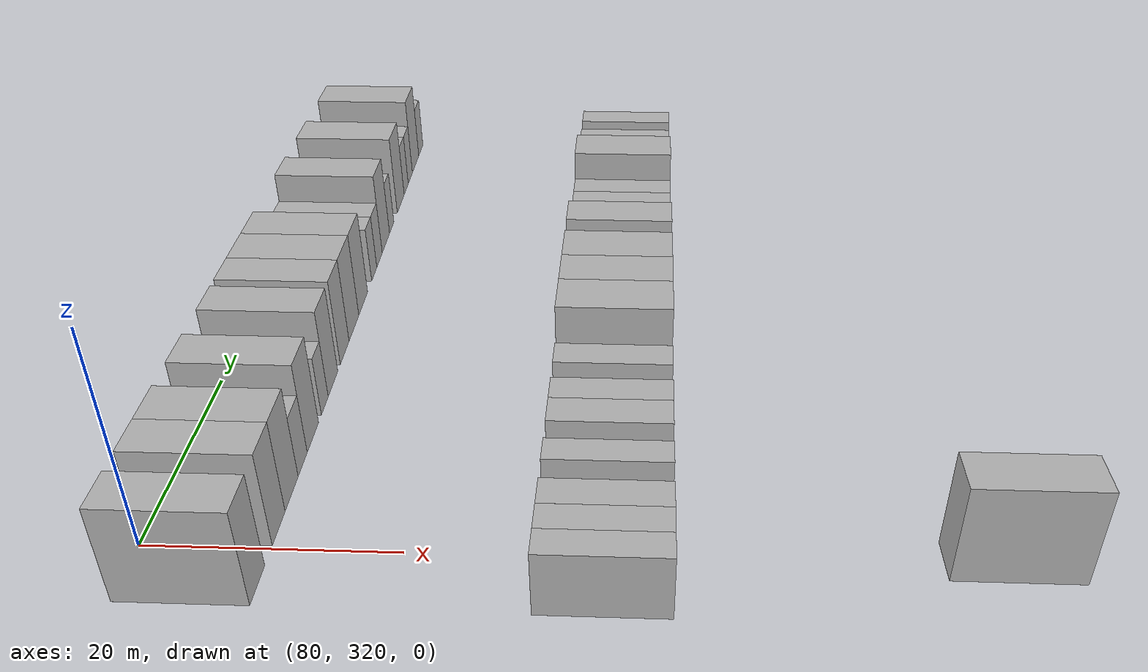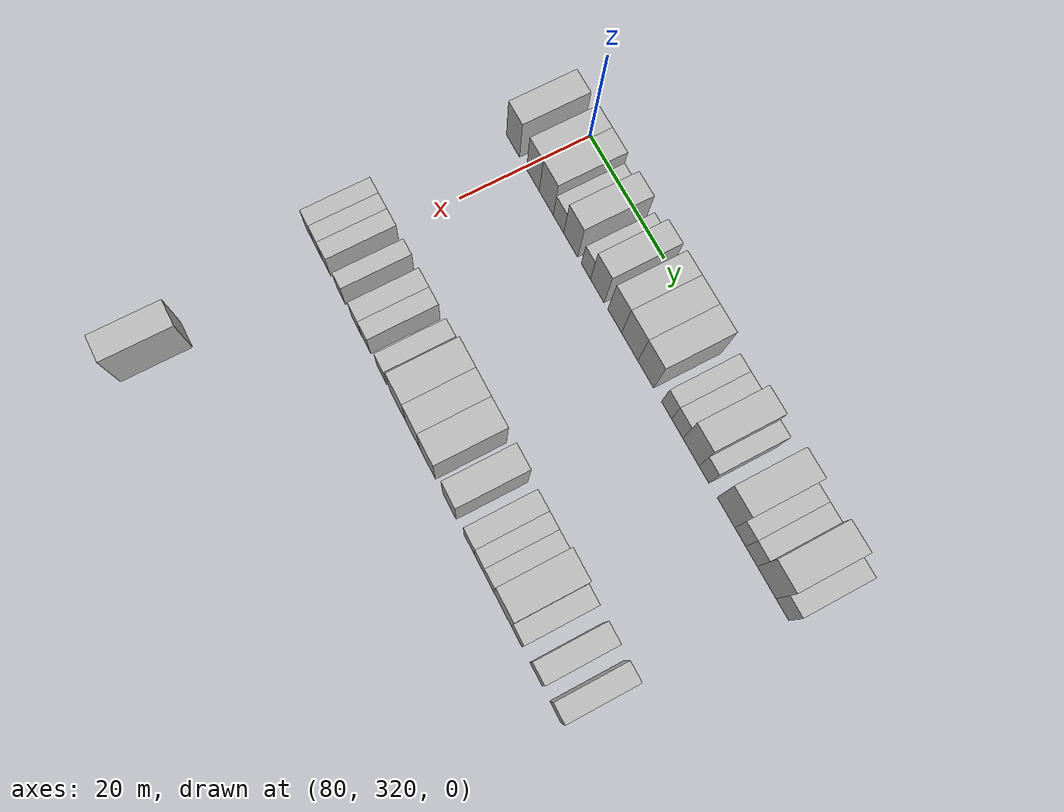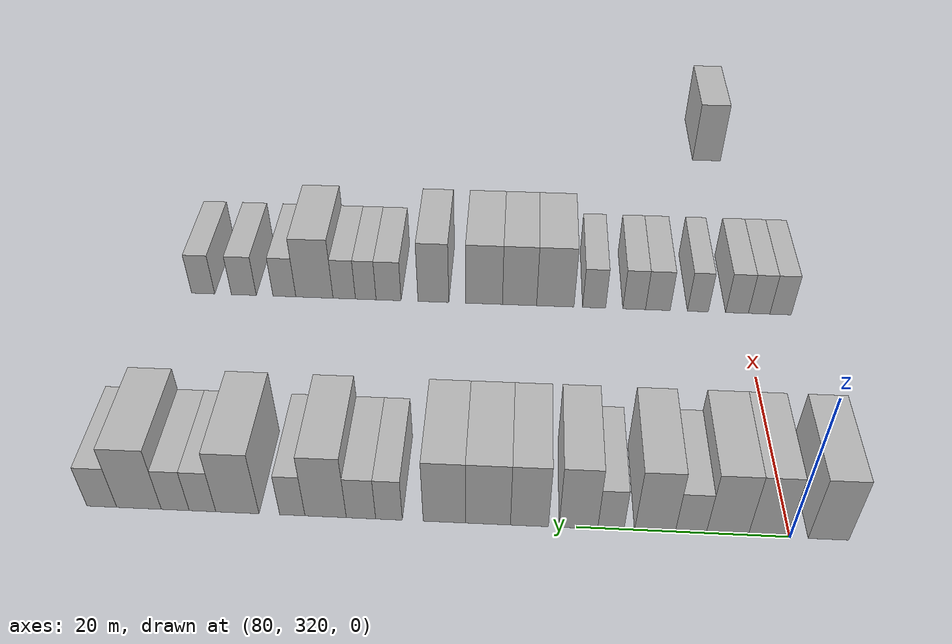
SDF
<sdf version="1.6">
 <world name="default">
  <model name="building_681">
   <static>1</static>
   <pose>85.0000 316.4107 0 0.000000 0.000000 0.000000</pose>
   <link name="link">
    <pose>0 0 4.50 0 0 0</pose>
    <collision name="collision"><geometry><box><size>10.0000 3.7704 9.0000</size></box></geometry></collision>
    <visual name="visual">
     <cast_shadows>0</cast_shadows>
     <geometry><box><size>10.0000 3.7704 9.0000</size></box></geometry>
     <material>
      <script>
       <uri>model://HANNAS_wall/materials/scripts</uri>
       <uri>model://HANNAS_wall/materials/textures</uri>
       <name>vrc/HANNAS_wall</name>
      </script>
     </material>
    </visual>
   </link>
  </model>
  <model name="building_682">
   <static>1</static>
   <pose>85.0000 322.0993 0 0.000000 0.000000 0.000000</pose>
   <link name="link">
    <pose>0 0 4.50 0 0 0</pose>
    <collision name="collision"><geometry><box><size>10.0000 3.6068 9.0000</size></box></geometry></collision>
    <visual name="visual">
     <cast_shadows>0</cast_shadows>
     <geometry><box><size>10.0000 3.6068 9.0000</size></box></geometry>
     <material>
      <script>
       <uri>model://HANNAS_wall/materials/scripts</uri>
       <uri>model://HANNAS_wall/materials/textures</uri>
       <name>vrc/HANNAS_wall</name>
      </script>
     </material>
    </visual>
   </link>
  </model>
  <model name="building_683">
   <static>1</static>
   <pose>85.0000 325.8701 0 0.000000 0.000000 0.000000</pose>
   <link name="link">
    <pose>0 0 4.50 0 0 0</pose>
    <collision name="collision"><geometry><box><size>10.0000 3.9348 9.0000</size></box></geometry></collision>
    <visual name="visual">
     <cast_shadows>0</cast_shadows>
     <geometry><box><size>10.0000 3.9348 9.0000</size></box></geometry>
     <material>
      <script>
       <uri>model://HANNAS_wall/materials/scripts</uri>
       <uri>model://HANNAS_wall/materials/textures</uri>
       <name>vrc/HANNAS_wall</name>
      </script>
     </material>
    </visual>
   </link>
  </model>
  <model name="building_684">
   <static>1</static>
   <pose>85.0000 329.2868 0 0.000000 0.000000 0.000000</pose>
   <link name="link">
    <pose>0 0 3.00 0 0 0</pose>
    <collision name="collision"><geometry><box><size>10.0000 2.8987 6.0000</size></box></geometry></collision>
    <visual name="visual">
     <cast_shadows>0</cast_shadows>
     <geometry><box><size>10.0000 2.8987 6.0000</size></box></geometry>
     <material>
      <script>
       <uri>model://HANNAS_wall/materials/scripts</uri>
       <uri>model://HANNAS_wall/materials/textures</uri>
       <name>vrc/HANNAS_wall</name>
      </script>
     </material>
    </visual>
   </link>
  </model>
  <model name="building_685">
   <static>1</static>
   <pose>85.0000 332.6490 0 0.000000 0.000000 0.000000</pose>
   <link name="link">
    <pose>0 0 4.50 0 0 0</pose>
    <collision name="collision"><geometry><box><size>10.0000 3.8256 9.0000</size></box></geometry></collision>
    <visual name="visual">
     <cast_shadows>0</cast_shadows>
     <geometry><box><size>10.0000 3.8256 9.0000</size></box></geometry>
     <material>
      <script>
       <uri>model://HANNAS_wall/materials/scripts</uri>
       <uri>model://HANNAS_wall/materials/textures</uri>
       <name>vrc/HANNAS_wall</name>
      </script>
     </material>
    </visual>
   </link>
  </model>
  <model name="building_686">
   <static>1</static>
   <pose>85.0000 336.7998 0 0.000000 0.000000 0.000000</pose>
   <link name="link">
    <pose>0 0 3.00 0 0 0</pose>
    <collision name="collision"><geometry><box><size>10.0000 2.4761 6.0000</size></box></geometry></collision>
    <visual name="visual">
     <cast_shadows>0</cast_shadows>
     <geometry><box><size>10.0000 2.4761 6.0000</size></box></geometry>
     <material>
      <script>
       <uri>model://HANNAS_wall/materials/scripts</uri>
       <uri>model://HANNAS_wall/materials/textures</uri>
       <name>vrc/HANNAS_wall</name>
      </script>
     </material>
    </visual>
   </link>
  </model>
  <model name="building_687">
   <static>1</static>
   <pose>85.0000 339.8692 0 0.000000 0.000000 0.000000</pose>
   <link name="link">
    <pose>0 0 4.50 0 0 0</pose>
    <collision name="collision"><geometry><box><size>10.0000 3.6625 9.0000</size></box></geometry></collision>
    <visual name="visual">
     <cast_shadows>0</cast_shadows>
     <geometry><box><size>10.0000 3.6625 9.0000</size></box></geometry>
     <material>
      <script>
       <uri>model://HANNAS_wall/materials/scripts</uri>
       <uri>model://HANNAS_wall/materials/textures</uri>
       <name>vrc/HANNAS_wall</name>
      </script>
     </material>
    </visual>
   </link>
  </model>
  <model name="building_688">
   <static>1</static>
   <pose>85.0000 344.5080 0 0.000000 0.000000 0.000000</pose>
   <link name="link">
    <pose>0 0 4.50 0 0 0</pose>
    <collision name="collision"><geometry><box><size>10.0000 3.6152 9.0000</size></box></geometry></collision>
    <visual name="visual">
     <cast_shadows>0</cast_shadows>
     <geometry><box><size>10.0000 3.6152 9.0000</size></box></geometry>
     <material>
      <script>
       <uri>model://HANNAS_wall/materials/scripts</uri>
       <uri>model://HANNAS_wall/materials/textures</uri>
       <name>vrc/HANNAS_wall</name>
      </script>
     </material>
    </visual>
   </link>
  </model>
  <model name="building_689">
   <static>1</static>
   <pose>85.0000 348.4435 0 0.000000 0.000000 0.000000</pose>
   <link name="link">
    <pose>0 0 4.50 0 0 0</pose>
    <collision name="collision"><geometry><box><size>10.0000 4.2559 9.0000</size></box></geometry></collision>
    <visual name="visual">
     <cast_shadows>0</cast_shadows>
     <geometry><box><size>10.0000 4.2559 9.0000</size></box></geometry>
     <material>
      <script>
       <uri>model://HANNAS_wall/materials/scripts</uri>
       <uri>model://HANNAS_wall/materials/textures</uri>
       <name>vrc/HANNAS_wall</name>
      </script>
     </material>
    </visual>
   </link>
  </model>
  <model name="building_690">
   <static>1</static>
   <pose>85.0000 352.6064 0 0.000000 0.000000 0.000000</pose>
   <link name="link">
    <pose>0 0 4.50 0 0 0</pose>
    <collision name="collision"><geometry><box><size>10.0000 4.0699 9.0000</size></box></geometry></collision>
    <visual name="visual">
     <cast_shadows>0</cast_shadows>
     <geometry><box><size>10.0000 4.0699 9.0000</size></box></geometry>
     <material>
      <script>
       <uri>model://HANNAS_wall/materials/scripts</uri>
       <uri>model://HANNAS_wall/materials/textures</uri>
       <name>vrc/HANNAS_wall</name>
      </script>
     </material>
    </visual>
   </link>
  </model>
  <model name="building_691">
   <static>1</static>
   <pose>85.0000 357.9178 0 0.000000 0.000000 0.000000</pose>
   <link name="link">
    <pose>0 0 3.00 0 0 0</pose>
    <collision name="collision"><geometry><box><size>10.0000 2.5530 6.0000</size></box></geometry></collision>
    <visual name="visual">
     <cast_shadows>0</cast_shadows>
     <geometry><box><size>10.0000 2.5530 6.0000</size></box></geometry>
     <material>
      <script>
       <uri>model://HANNAS_wall/materials/scripts</uri>
       <uri>model://HANNAS_wall/materials/textures</uri>
       <name>vrc/HANNAS_wall</name>
      </script>
     </material>
    </visual>
   </link>
  </model>
  <model name="building_692">
   <static>1</static>
   <pose>85.0000 360.6095 0 0.000000 0.000000 0.000000</pose>
   <link name="link">
    <pose>0 0 3.00 0 0 0</pose>
    <collision name="collision"><geometry><box><size>10.0000 2.8302 6.0000</size></box></geometry></collision>
    <visual name="visual">
     <cast_shadows>0</cast_shadows>
     <geometry><box><size>10.0000 2.8302 6.0000</size></box></geometry>
     <material>
      <script>
       <uri>model://HANNAS_wall/materials/scripts</uri>
       <uri>model://HANNAS_wall/materials/textures</uri>
       <name>vrc/HANNAS_wall</name>
      </script>
     </material>
    </visual>
   </link>
  </model>
  <model name="building_693">
   <static>1</static>
   <pose>85.0000 364.0198 0 0.000000 0.000000 0.000000</pose>
   <link name="link">
    <pose>0 0 4.50 0 0 0</pose>
    <collision name="collision"><geometry><box><size>10.0000 3.9904 9.0000</size></box></geometry></collision>
    <visual name="visual">
     <cast_shadows>0</cast_shadows>
     <geometry><box><size>10.0000 3.9904 9.0000</size></box></geometry>
     <material>
      <script>
       <uri>model://HANNAS_wall/materials/scripts</uri>
       <uri>model://HANNAS_wall/materials/textures</uri>
       <name>vrc/HANNAS_wall</name>
      </script>
     </material>
    </visual>
   </link>
  </model>
  <model name="building_694">
   <static>1</static>
   <pose>85.0000 367.2369 0 0.000000 0.000000 0.000000</pose>
   <link name="link">
    <pose>0 0 3.00 0 0 0</pose>
    <collision name="collision"><geometry><box><size>10.0000 2.4440 6.0000</size></box></geometry></collision>
    <visual name="visual">
     <cast_shadows>0</cast_shadows>
     <geometry><box><size>10.0000 2.4440 6.0000</size></box></geometry>
     <material>
      <script>
       <uri>model://HANNAS_wall/materials/scripts</uri>
       <uri>model://HANNAS_wall/materials/textures</uri>
       <name>vrc/HANNAS_wall</name>
      </script>
     </material>
    </visual>
   </link>
  </model>
  <model name="building_695">
   <static>1</static>
   <pose>85.0000 372.5616 0 0.000000 0.000000 0.000000</pose>
   <link name="link">
    <pose>0 0 4.50 0 0 0</pose>
    <collision name="collision"><geometry><box><size>10.0000 4.2052 9.0000</size></box></geometry></collision>
    <visual name="visual">
     <cast_shadows>0</cast_shadows>
     <geometry><box><size>10.0000 4.2052 9.0000</size></box></geometry>
     <material>
      <script>
       <uri>model://HANNAS_wall/materials/scripts</uri>
       <uri>model://HANNAS_wall/materials/textures</uri>
       <name>vrc/HANNAS_wall</name>
      </script>
     </material>
    </visual>
   </link>
  </model>
  <model name="building_696">
   <static>1</static>
   <pose>85.0000 375.9601 0 0.000000 0.000000 0.000000</pose>
   <link name="link">
    <pose>0 0 3.00 0 0 0</pose>
    <collision name="collision"><geometry><box><size>10.0000 2.5918 6.0000</size></box></geometry></collision>
    <visual name="visual">
     <cast_shadows>0</cast_shadows>
     <geometry><box><size>10.0000 2.5918 6.0000</size></box></geometry>
     <material>
      <script>
       <uri>model://HANNAS_wall/materials/scripts</uri>
       <uri>model://HANNAS_wall/materials/textures</uri>
       <name>vrc/HANNAS_wall</name>
      </script>
     </material>
    </visual>
   </link>
  </model>
  <model name="building_697">
   <static>1</static>
   <pose>85.0000 378.6197 0 0.000000 0.000000 0.000000</pose>
   <link name="link">
    <pose>0 0 3.00 0 0 0</pose>
    <collision name="collision"><geometry><box><size>10.0000 2.7275 6.0000</size></box></geometry></collision>
    <visual name="visual">
     <cast_shadows>0</cast_shadows>
     <geometry><box><size>10.0000 2.7275 6.0000</size></box></geometry>
     <material>
      <script>
       <uri>model://HANNAS_wall/materials/scripts</uri>
       <uri>model://HANNAS_wall/materials/textures</uri>
       <name>vrc/HANNAS_wall</name>
      </script>
     </material>
    </visual>
   </link>
  </model>
  <model name="building_698">
   <static>1</static>
   <pose>85.0000 382.1628 0 0.000000 0.000000 0.000000</pose>
   <link name="link">
    <pose>0 0 4.50 0 0 0</pose>
    <collision name="collision"><geometry><box><size>10.0000 4.3586 9.0000</size></box></geometry></collision>
    <visual name="visual">
     <cast_shadows>0</cast_shadows>
     <geometry><box><size>10.0000 4.3586 9.0000</size></box></geometry>
     <material>
      <script>
       <uri>model://HANNAS_wall/materials/scripts</uri>
       <uri>model://HANNAS_wall/materials/textures</uri>
       <name>vrc/HANNAS_wall</name>
      </script>
     </material>
    </visual>
   </link>
  </model>
  <model name="building_699">
   <static>1</static>
   <pose>85.0000 385.8057 0 0.000000 0.000000 0.000000</pose>
   <link name="link">
    <pose>0 0 3.00 0 0 0</pose>
    <collision name="collision"><geometry><box><size>10.0000 2.9273 6.0000</size></box></geometry></collision>
    <visual name="visual">
     <cast_shadows>0</cast_shadows>
     <geometry><box><size>10.0000 2.9273 6.0000</size></box></geometry>
     <material>
      <script>
       <uri>model://HANNAS_wall/materials/scripts</uri>
       <uri>model://HANNAS_wall/materials/textures</uri>
       <name>vrc/HANNAS_wall</name>
      </script>
     </material>
    </visual>
   </link>
  </model>
  <model name="building_913">
   <static>1</static>
   <pose>115.0000 315.6768 0 0.000000 0.000000 0.000000</pose>
   <link name="link">
    <pose>0 0 3.00 0 0 0</pose>
    <collision name="collision"><geometry><box><size>10.0000 2.4586 6.0000</size></box></geometry></collision>
    <visual name="visual">
     <cast_shadows>0</cast_shadows>
     <geometry><box><size>10.0000 2.4586 6.0000</size></box></geometry>
     <material>
      <script>
       <uri>model://HANNAS_wall/materials/scripts</uri>
       <uri>model://HANNAS_wall/materials/textures</uri>
       <name>vrc/HANNAS_wall</name>
      </script>
     </material>
    </visual>
   </link>
  </model>
  <model name="building_914">
   <static>1</static>
   <pose>115.0000 318.1401 0 0.000000 0.000000 0.000000</pose>
   <link name="link">
    <pose>0 0 3.00 0 0 0</pose>
    <collision name="collision"><geometry><box><size>10.0000 2.4680 6.0000</size></box></geometry></collision>
    <visual name="visual">
     <cast_shadows>0</cast_shadows>
     <geometry><box><size>10.0000 2.4680 6.0000</size></box></geometry>
     <material>
      <script>
       <uri>model://HANNAS_wall/materials/scripts</uri>
       <uri>model://HANNAS_wall/materials/textures</uri>
       <name>vrc/HANNAS_wall</name>
      </script>
     </material>
    </visual>
   </link>
  </model>
  <model name="building_915">
   <static>1</static>
   <pose>115.0000 320.6905 0 0.000000 0.000000 0.000000</pose>
   <link name="link">
    <pose>0 0 3.00 0 0 0</pose>
    <collision name="collision"><geometry><box><size>10.0000 2.6327 6.0000</size></box></geometry></collision>
    <visual name="visual">
     <cast_shadows>0</cast_shadows>
     <geometry><box><size>10.0000 2.6327 6.0000</size></box></geometry>
     <material>
      <script>
       <uri>model://HANNAS_wall/materials/scripts</uri>
       <uri>model://HANNAS_wall/materials/textures</uri>
       <name>vrc/HANNAS_wall</name>
      </script>
     </material>
    </visual>
   </link>
  </model>
  <model name="building_916">
   <static>1</static>
   <pose>115.0000 325.2148 0 0.000000 0.000000 0.000000</pose>
   <link name="link">
    <pose>0 0 3.00 0 0 0</pose>
    <collision name="collision"><geometry><box><size>10.0000 2.4161 6.0000</size></box></geometry></collision>
    <visual name="visual">
     <cast_shadows>0</cast_shadows>
     <geometry><box><size>10.0000 2.4161 6.0000</size></box></geometry>
     <material>
      <script>
       <uri>model://HANNAS_wall/materials/scripts</uri>
       <uri>model://HANNAS_wall/materials/textures</uri>
       <name>vrc/HANNAS_wall</name>
      </script>
     </material>
    </visual>
   </link>
  </model>
  <model name="building_917">
   <static>1</static>
   <pose>115.0000 329.8555 0 0.000000 0.000000 0.000000</pose>
   <link name="link">
    <pose>0 0 3.00 0 0 0</pose>
    <collision name="collision"><geometry><box><size>10.0000 2.8653 6.0000</size></box></geometry></collision>
    <visual name="visual">
     <cast_shadows>0</cast_shadows>
     <geometry><box><size>10.0000 2.8653 6.0000</size></box></geometry>
     <material>
      <script>
       <uri>model://HANNAS_wall/materials/scripts</uri>
       <uri>model://HANNAS_wall/materials/textures</uri>
       <name>vrc/HANNAS_wall</name>
      </script>
     </material>
    </visual>
   </link>
  </model>
  <model name="building_918">
   <static>1</static>
   <pose>115.0000 332.6065 0 0.000000 0.000000 0.000000</pose>
   <link name="link">
    <pose>0 0 3.00 0 0 0</pose>
    <collision name="collision"><geometry><box><size>10.0000 2.6366 6.0000</size></box></geometry></collision>
    <visual name="visual">
     <cast_shadows>0</cast_shadows>
     <geometry><box><size>10.0000 2.6366 6.0000</size></box></geometry>
     <material>
      <script>
       <uri>model://HANNAS_wall/materials/scripts</uri>
       <uri>model://HANNAS_wall/materials/textures</uri>
       <name>vrc/HANNAS_wall</name>
      </script>
     </material>
    </visual>
   </link>
  </model>
  <model name="building_919">
   <static>1</static>
   <pose>115.0000 337.2706 0 0.000000 0.000000 0.000000</pose>
   <link name="link">
    <pose>0 0 3.00 0 0 0</pose>
    <collision name="collision"><geometry><box><size>10.0000 2.6916 6.0000</size></box></geometry></collision>
    <visual name="visual">
     <cast_shadows>0</cast_shadows>
     <geometry><box><size>10.0000 2.6916 6.0000</size></box></geometry>
     <material>
      <script>
       <uri>model://HANNAS_wall/materials/scripts</uri>
       <uri>model://HANNAS_wall/materials/textures</uri>
       <name>vrc/HANNAS_wall</name>
      </script>
     </material>
    </visual>
   </link>
  </model>
  <model name="building_920">
   <static>1</static>
   <pose>115.0000 341.8025 0 0.000000 0.000000 0.000000</pose>
   <link name="link">
    <pose>0 0 4.50 0 0 0</pose>
    <collision name="collision"><geometry><box><size>10.0000 4.3723 9.0000</size></box></geometry></collision>
    <visual name="visual">
     <cast_shadows>0</cast_shadows>
     <geometry><box><size>10.0000 4.3723 9.0000</size></box></geometry>
     <material>
      <script>
       <uri>model://HANNAS_wall/materials/scripts</uri>
       <uri>model://HANNAS_wall/materials/textures</uri>
       <name>vrc/HANNAS_wall</name>
      </script>
     </material>
    </visual>
   </link>
  </model>
  <model name="building_921">
   <static>1</static>
   <pose>115.0000 345.9900 0 0.000000 0.000000 0.000000</pose>
   <link name="link">
    <pose>0 0 4.50 0 0 0</pose>
    <collision name="collision"><geometry><box><size>10.0000 4.0027 9.0000</size></box></geometry></collision>
    <visual name="visual">
     <cast_shadows>0</cast_shadows>
     <geometry><box><size>10.0000 4.0027 9.0000</size></box></geometry>
     <material>
      <script>
       <uri>model://HANNAS_wall/materials/scripts</uri>
       <uri>model://HANNAS_wall/materials/textures</uri>
       <name>vrc/HANNAS_wall</name>
      </script>
     </material>
    </visual>
   </link>
  </model>
  <model name="building_922">
   <static>1</static>
   <pose>115.0000 350.1486 0 0.000000 0.000000 0.000000</pose>
   <link name="link">
    <pose>0 0 4.50 0 0 0</pose>
    <collision name="collision"><geometry><box><size>10.0000 4.3145 9.0000</size></box></geometry></collision>
    <visual name="visual">
     <cast_shadows>0</cast_shadows>
     <geometry><box><size>10.0000 4.3145 9.0000</size></box></geometry>
     <material>
      <script>
       <uri>model://HANNAS_wall/materials/scripts</uri>
       <uri>model://HANNAS_wall/materials/textures</uri>
       <name>vrc/HANNAS_wall</name>
      </script>
     </material>
    </visual>
   </link>
  </model>
  <model name="building_923">
   <static>1</static>
   <pose>115.0000 356.1270 0 0.000000 0.000000 0.000000</pose>
   <link name="link">
    <pose>0 0 4.50 0 0 0</pose>
    <collision name="collision"><geometry><box><size>10.0000 3.6424 9.0000</size></box></geometry></collision>
    <visual name="visual">
     <cast_shadows>0</cast_shadows>
     <geometry><box><size>10.0000 3.6424 9.0000</size></box></geometry>
     <material>
      <script>
       <uri>model://HANNAS_wall/materials/scripts</uri>
       <uri>model://HANNAS_wall/materials/textures</uri>
       <name>vrc/HANNAS_wall</name>
      </script>
     </material>
    </visual>
   </link>
  </model>
  <model name="building_924">
   <static>1</static>
   <pose>115.0000 361.4267 0 0.000000 0.000000 0.000000</pose>
   <link name="link">
    <pose>0 0 3.00 0 0 0</pose>
    <collision name="collision"><geometry><box><size>10.0000 2.9569 6.0000</size></box></geometry></collision>
    <visual name="visual">
     <cast_shadows>0</cast_shadows>
     <geometry><box><size>10.0000 2.9569 6.0000</size></box></geometry>
     <material>
      <script>
       <uri>model://HANNAS_wall/materials/scripts</uri>
       <uri>model://HANNAS_wall/materials/textures</uri>
       <name>vrc/HANNAS_wall</name>
      </script>
     </material>
    </visual>
   </link>
  </model>
  <model name="building_925">
   <static>1</static>
   <pose>115.0000 364.1305 0 0.000000 0.000000 0.000000</pose>
   <link name="link">
    <pose>0 0 3.00 0 0 0</pose>
    <collision name="collision"><geometry><box><size>10.0000 2.4508 6.0000</size></box></geometry></collision>
    <visual name="visual">
     <cast_shadows>0</cast_shadows>
     <geometry><box><size>10.0000 2.4508 6.0000</size></box></geometry>
     <material>
      <script>
       <uri>model://HANNAS_wall/materials/scripts</uri>
       <uri>model://HANNAS_wall/materials/textures</uri>
       <name>vrc/HANNAS_wall</name>
      </script>
     </material>
    </visual>
   </link>
  </model>
  <model name="building_926">
   <static>1</static>
   <pose>115.0000 366.6886 0 0.000000 0.000000 0.000000</pose>
   <link name="link">
    <pose>0 0 3.00 0 0 0</pose>
    <collision name="collision"><geometry><box><size>10.0000 2.6654 6.0000</size></box></geometry></collision>
    <visual name="visual">
     <cast_shadows>0</cast_shadows>
     <geometry><box><size>10.0000 2.6654 6.0000</size></box></geometry>
     <material>
      <script>
       <uri>model://HANNAS_wall/materials/scripts</uri>
       <uri>model://HANNAS_wall/materials/textures</uri>
       <name>vrc/HANNAS_wall</name>
      </script>
     </material>
    </visual>
   </link>
  </model>
  <model name="building_927">
   <static>1</static>
   <pose>115.0000 370.2358 0 0.000000 0.000000 0.000000</pose>
   <link name="link">
    <pose>0 0 4.50 0 0 0</pose>
    <collision name="collision"><geometry><box><size>10.0000 4.4289 9.0000</size></box></geometry></collision>
    <visual name="visual">
     <cast_shadows>0</cast_shadows>
     <geometry><box><size>10.0000 4.4289 9.0000</size></box></geometry>
     <material>
      <script>
       <uri>model://HANNAS_wall/materials/scripts</uri>
       <uri>model://HANNAS_wall/materials/textures</uri>
       <name>vrc/HANNAS_wall</name>
      </script>
     </material>
    </visual>
   </link>
  </model>
  <model name="building_928">
   <static>1</static>
   <pose>115.0000 373.8141 0 0.000000 0.000000 0.000000</pose>
   <link name="link">
    <pose>0 0 3.00 0 0 0</pose>
    <collision name="collision"><geometry><box><size>10.0000 2.7278 6.0000</size></box></geometry></collision>
    <visual name="visual">
     <cast_shadows>0</cast_shadows>
     <geometry><box><size>10.0000 2.7278 6.0000</size></box></geometry>
     <material>
      <script>
       <uri>model://HANNAS_wall/materials/scripts</uri>
       <uri>model://HANNAS_wall/materials/textures</uri>
       <name>vrc/HANNAS_wall</name>
      </script>
     </material>
    </visual>
   </link>
  </model>
  <model name="building_929">
   <static>1</static>
   <pose>115.0000 378.6697 0 0.000000 0.000000 0.000000</pose>
   <link name="link">
    <pose>0 0 3.00 0 0 0</pose>
    <collision name="collision"><geometry><box><size>10.0000 2.9833 6.0000</size></box></geometry></collision>
    <visual name="visual">
     <cast_shadows>0</cast_shadows>
     <geometry><box><size>10.0000 2.9833 6.0000</size></box></geometry>
     <material>
      <script>
       <uri>model://HANNAS_wall/materials/scripts</uri>
       <uri>model://HANNAS_wall/materials/textures</uri>
       <name>vrc/HANNAS_wall</name>
      </script>
     </material>
    </visual>
   </link>
  </model>
  <model name="building_930">
   <static>1</static>
   <pose>115.0000 383.5480 0 0.000000 0.000000 0.000000</pose>
   <link name="link">
    <pose>0 0 3.00 0 0 0</pose>
    <collision name="collision"><geometry><box><size>10.0000 2.7733 6.0000</size></box></geometry></collision>
    <visual name="visual">
     <cast_shadows>0</cast_shadows>
     <geometry><box><size>10.0000 2.7733 6.0000</size></box></geometry>
     <material>
      <script>
       <uri>model://HANNAS_wall/materials/scripts</uri>
       <uri>model://HANNAS_wall/materials/textures</uri>
       <name>vrc/HANNAS_wall</name>
      </script>
     </material>
    </visual>
   </link>
  </model>
  <model name="building_1150">
   <static>1</static>
   <pose>145.0000 320.6465 0 0.000000 0.000000 0.000000</pose>
   <link name="link">
    <pose>0 0 4.50 0 0 0</pose>
    <collision name="collision"><geometry><box><size>10.0000 3.8289 9.0000</size></box></geometry></collision>
    <visual name="visual">
     <cast_shadows>0</cast_shadows>
     <geometry><box><size>10.0000 3.8289 9.0000</size></box></geometry>
     <material>
      <script>
       <uri>model://HANNAS_wall/materials/scripts</uri>
       <uri>model://HANNAS_wall/materials/textures</uri>
       <name>vrc/HANNAS_wall</name>
      </script>
     </material>
    </visual>
   </link>
  </model>
 </world>
</sdf>
